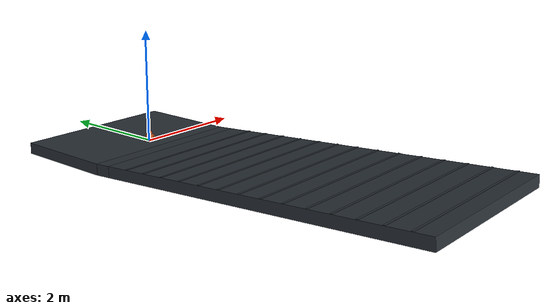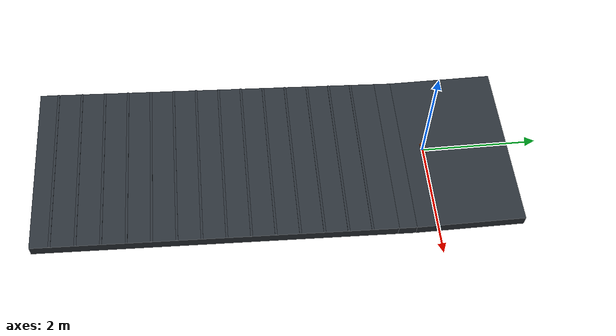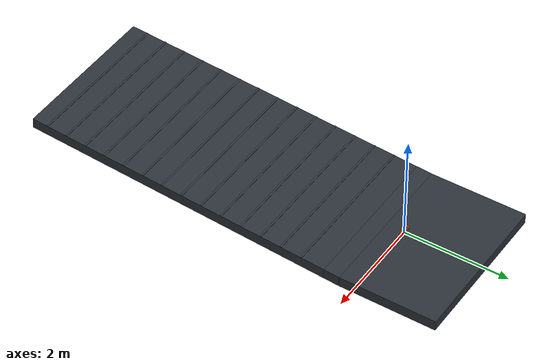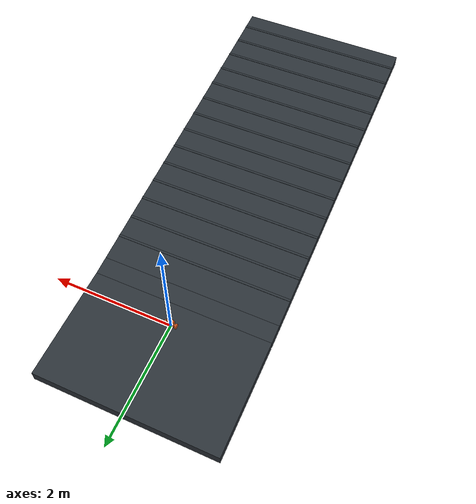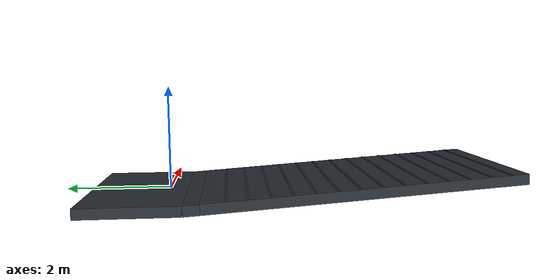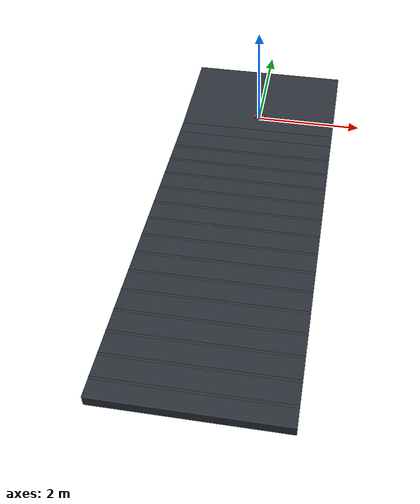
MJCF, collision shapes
<mujoco model="Stage4B rtrain_013_p04p0">
  <compiler angle="radian" meshdir="../../../../assets/upstream_local" />
  <option timestep="0.001" integrator="implicitfast" gravity="0 0 -9.81" />
  <statistic center="0 0 0.05" extent="0.28" />
  <default>
    <default class="visual">
      <geom contype="0" conaffinity="0" group="2" />
    </default>
    <default class="collision">
      <geom group="3" rgba="0.85 0.35 0.12 0.25" solref="0.005 1" solimp="0.9 0.95 0.001" />
    </default>
  </default>
  <asset>
    <texture name="ground_tex" type="2d" builtin="checker" rgb1="0.22 0.25 0.28" rgb2="0.12 0.14 0.16" width="256" height="256" />
    <material name="ground_mat" texture="ground_tex" texrepeat="4 4" reflectance="0.15" />
    <mesh name="main_frame_mesh" file="main_frame.stl" scale="0.001 0.001 0.001" />
    <mesh name="wheel_base_mesh" file="wheel_base.stl" scale="0.001 0.001 0.001" />
    <mesh name="cover_mesh" file="cover.stl" scale="0.001 0.001 0.001" />
    <mesh name="motor_left_mesh" file="motor_left.stl" scale="0.001 0.001 0.001" />
    <mesh name="motor_right_mesh" file="motor_right.stl" scale="0.001 0.001 0.001" />
    <mesh name="mc33926_mesh" file="mc33926.stl" scale="0.001 0.001 0.001" />
    <mesh name="wheel_mesh" file="wheel.stl" scale="0.001 0.001 0.001" />
    <mesh name="adapter_left_mesh" file="adapter_left.stl" scale="0.001 0.001 0.001" />
    <mesh name="adapter_right_mesh" file="adapter_right.stl" scale="0.001 0.001 0.001" />
  </asset>
  <worldbody>
    <light pos="0 -0.5 0.8" dir="0 0.6 -1" diffuse="0.8 0.8 0.8" />
    <geom name="terrain_flat" type="box" pos="0 0.575 -0.1" size="1.5 0.925 0.1" material="ground_mat" friction="0.37904971 0.005 0.0001" condim="3" />
    <geom name="terrain_transition" type="box" pos="0 -0.506610254913 -0.0892929339644" euler="-0.0698131700798 0 0" size="1.5 0.15 0.1" material="ground_mat" friction="0.37904971 0.005 0.0001" condim="3" />
    <geom name="terrain_constant_grade" type="box" pos="0 -3.64893701323 0.13043995833" euler="-0.0698131700798 0 0" size="1.5 3 0.1" material="ground_mat" friction="0.37904971 0.005 0.0001" condim="3" />
    <geom name="terrain_rough_00" type="box" pos="0 -1.0978990257 0.056235909381" euler="-0.0698131700798 0 0" size="1.5 0.018854189806 0.00392812278262" material="ground_mat" friction="0.37904971 0.005 0.0001" condim="3" />
    <geom name="terrain_rough_01" type="box" pos="0 -1.49966023844 0.0843297901503" euler="-0.0698131700798 0 0" size="1.5 0.018854189806 0.00392812278262" material="ground_mat" friction="0.37904971 0.005 0.0001" condim="3" />
    <geom name="terrain_rough_02" type="box" pos="0 -1.90142145118 0.11242367092" euler="-0.0698131700798 0 0" size="1.5 0.018854189806 0.00392812278262" material="ground_mat" friction="0.37904971 0.005 0.0001" condim="3" />
    <geom name="terrain_rough_03" type="box" pos="0 -2.30318266391 0.140517551689" euler="-0.0698131700798 0 0" size="1.5 0.018854189806 0.00392812278262" material="ground_mat" friction="0.37904971 0.005 0.0001" condim="3" />
    <geom name="terrain_rough_04" type="box" pos="0 -2.70494387665 0.168611432458" euler="-0.0698131700798 0 0" size="1.5 0.018854189806 0.00392812278262" material="ground_mat" friction="0.37904971 0.005 0.0001" condim="3" />
    <geom name="terrain_rough_05" type="box" pos="0 -3.10670508939 0.196705313228" euler="-0.0698131700798 0 0" size="1.5 0.018854189806 0.00392812278262" material="ground_mat" friction="0.37904971 0.005 0.0001" condim="3" />
    <geom name="terrain_rough_06" type="box" pos="0 -3.50846630213 0.224799193997" euler="-0.0698131700798 0 0" size="1.5 0.018854189806 0.00392812278262" material="ground_mat" friction="0.37904971 0.005 0.0001" condim="3" />
    <geom name="terrain_rough_07" type="box" pos="0 -3.91022751486 0.252893074766" euler="-0.0698131700798 0 0" size="1.5 0.018854189806 0.00392812278262" material="ground_mat" friction="0.37904971 0.005 0.0001" condim="3" />
    <geom name="terrain_rough_08" type="box" pos="0 -4.3119887276 0.280986955535" euler="-0.0698131700798 0 0" size="1.5 0.018854189806 0.00392812278262" material="ground_mat" friction="0.37904971 0.005 0.0001" condim="3" />
    <geom name="terrain_rough_09" type="box" pos="0 -4.71374994034 0.309080836305" euler="-0.0698131700798 0 0" size="1.5 0.018854189806 0.00392812278262" material="ground_mat" friction="0.37904971 0.005 0.0001" condim="3" />
    <geom name="terrain_rough_10" type="box" pos="0 -5.11551115308 0.337174717074" euler="-0.0698131700798 0 0" size="1.5 0.018854189806 0.00392812278262" material="ground_mat" friction="0.37904971 0.005 0.0001" condim="3" />
    <geom name="terrain_rough_11" type="box" pos="0 -5.51727236581 0.365268597843" euler="-0.0698131700798 0 0" size="1.5 0.018854189806 0.00392812278262" material="ground_mat" friction="0.37904971 0.005 0.0001" condim="3" />
    <geom name="terrain_rough_12" type="box" pos="0 -5.91903357855 0.393362478613" euler="-0.0698131700798 0 0" size="1.5 0.018854189806 0.00392812278262" material="ground_mat" friction="0.37904971 0.005 0.0001" condim="3" />
    <geom name="terrain_rough_13" type="box" pos="0 -6.32079479129 0.421456359382" euler="-0.0698131700798 0 0" size="1.5 0.018854189806 0.00392812278262" material="ground_mat" friction="0.37904971 0.005 0.0001" condim="3" />
    <body name="chassis" pos="0 0 0.043">
      <freejoint name="root" />
      <inertial pos="0.0001592717873 -0.001394466535 0.03368627387" mass="0.8173706489" fullinertia="0.0009508052638 0.001636345835 0.0009938057434 -1.163464906e-07 -4.840496598e-06 3.454944565e-05" />
      <geom name="main_frame_visual" class="visual" type="mesh" mesh="main_frame_mesh" rgba="0.12 0.42 0.72 1" />
      <geom name="wheel_base_visual" class="visual" type="mesh" mesh="wheel_base_mesh" rgba="0.95 0.50 0.10 1" />
      <geom name="cover_visual" class="visual" type="mesh" mesh="cover_mesh" rgba="0.18 0.72 0.32 0.72" />
      <geom name="motor_left_visual" class="visual" type="mesh" mesh="motor_left_mesh" rgba="0.45 0.47 0.50 1" />
      <geom name="motor_right_visual" class="visual" type="mesh" mesh="motor_right_mesh" rgba="0.45 0.47 0.50 1" />
      <geom name="mc33926_visual" class="visual" type="mesh" mesh="mc33926_mesh" rgba="0.08 0.36 0.18 1" />
      <geom name="battery_1_visual" class="visual" type="box" pos="0 -0.012 0.038" size="0.035 0.007 0.025" rgba="0.15 0.25 0.75 1" />
      <geom name="battery_2_visual" class="visual" type="box" pos="0 0.012 0.038" size="0.035 0.007 0.025" rgba="0.15 0.25 0.75 1" />
      <geom name="electronics_lump_visual" class="visual" type="box" pos="0 -0.024 0.067" size="0.035 0.006 0.0425" rgba="0.10 0.42 0.20 0.65" />
      <geom name="wheel_base_collision" class="collision" type="box" pos="0 0.0005 0.0042" size="0.074 0.0201 0.0198" />
      <geom name="lower_chassis_collision" class="collision" type="box" pos="0.001 -0.0015 0.038" size="0.0595 0.0325 0.038" />
      <geom name="upper_chassis_collision" class="collision" type="capsule" fromto="-0.024 -0.0015 0.096 0.026 -0.0015 0.096" size="0.033" />
      <site name="imu_site" type="box" pos="0 0 0.020" quat="1 0 0 0" size="0.004 0.003 0.001" rgba="1 0.15 0.05 1" />
      <body name="left_wheel" pos="-0.0885 0 0">
        <joint name="left_wheel_hinge" type="hinge" axis="1 0 0" damping="0.002" frictionloss="0.002" />
        <inertial pos="0.001407549168 -2.310217342e-08 4.024972882e-05" mass="0.1051" fullinertia="8.559060347e-05 4.760138372e-05 4.763051958e-05 2.677568832e-11 -3.525425309e-08 -1.463149106e-11" />
        <geom name="left_wheel_visual" class="visual" type="mesh" mesh="wheel_mesh" rgba="0.04 0.05 0.06 1" />
        <geom name="left_adapter_visual" class="visual" type="mesh" mesh="adapter_left_mesh" rgba="0.12 0.48 0.82 1" />
        <geom name="left_wheel_collision" class="collision" type="cylinder" size="0.042 0.012" quat="0.7071067812 0 0.7071067812 0" friction="0.37904971 0.005 0.0001" />
      </body>
      <body name="right_wheel" pos="0.0885 0 0">
        <joint name="right_wheel_hinge" type="hinge" axis="1 0 0" damping="0.002" frictionloss="0.002" />
        <inertial pos="-0.001407437868 -2.310217342e-08 -4.019113045e-05" mass="0.1051" fullinertia="8.559060397e-05 4.760141714e-05 4.763055251e-05 -2.601653908e-11 -3.526339188e-08 1.57007511e-11" />
        <geom name="right_wheel_visual" class="visual" type="mesh" mesh="wheel_mesh" rgba="0.04 0.05 0.06 1" />
        <geom name="right_adapter_visual" class="visual" type="mesh" mesh="adapter_right_mesh" rgba="0.12 0.48 0.82 1" />
        <geom name="right_wheel_collision" class="collision" type="cylinder" size="0.042 0.012" quat="0.7071067812 0 0.7071067812 0" friction="0.37904971 0.005 0.0001" />
      </body>
    </body>
  </worldbody>
  <actuator>
    <motor name="left_wheel_torque" joint="left_wheel_hinge" gear="1" ctrllimited="true" ctrlrange="-0.63 0.63" forcelimited="true" forcerange="-0.63 0.63" />
    <motor name="right_wheel_torque" joint="right_wheel_hinge" gear="1" ctrllimited="true" ctrlrange="-0.63 0.63" forcelimited="true" forcerange="-0.63 0.63" />
  </actuator>
  <sensor>
    <accelerometer name="imu_accelerometer" site="imu_site" />
    <gyro name="imu_gyro" site="imu_site" />
    <jointpos name="left_wheel_angle" joint="left_wheel_hinge" />
    <jointpos name="right_wheel_angle" joint="right_wheel_hinge" />
  </sensor>
  <keyframe>
    <key name="upright" qpos="0 0 0.043 1 0 0 0 0 0" />
  </keyframe>
</mujoco>
